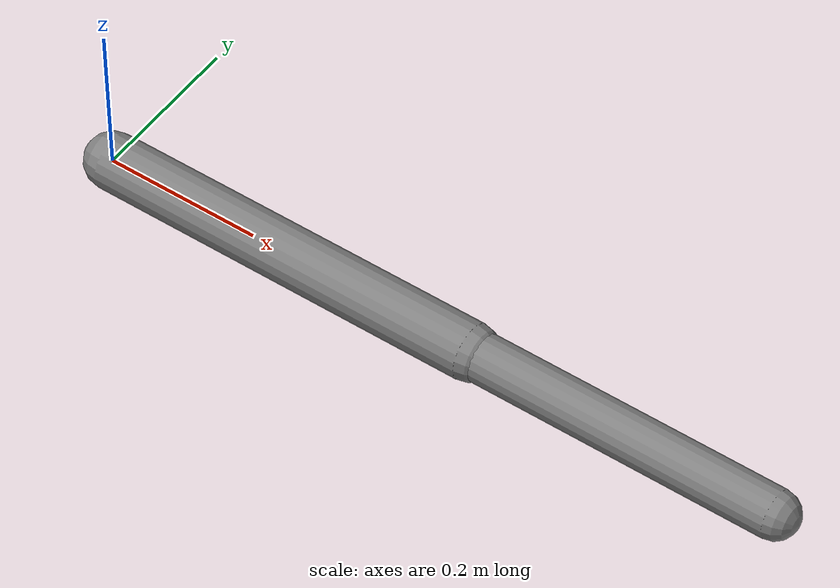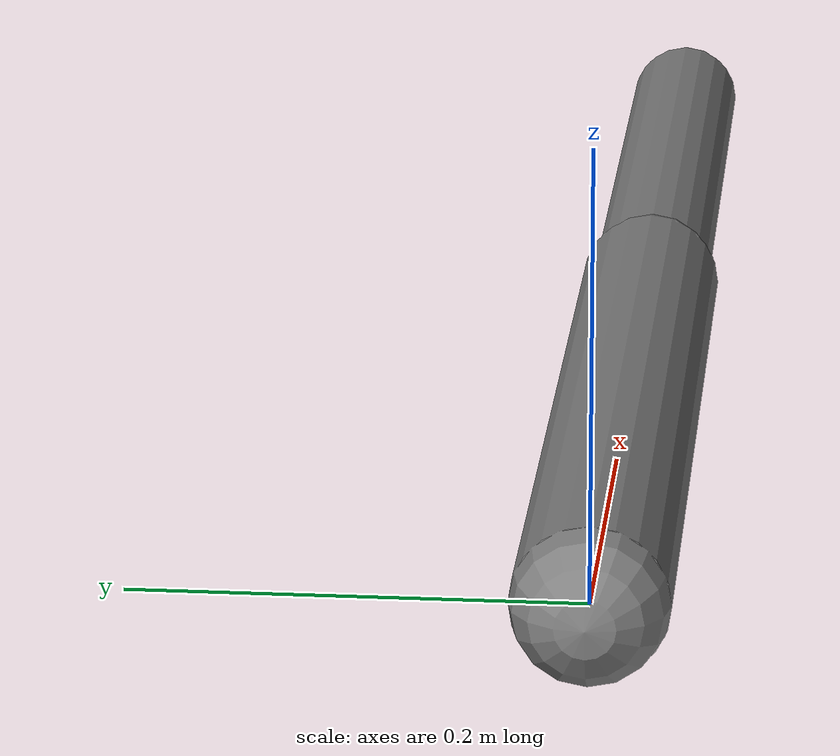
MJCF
<mujoco model="native_upgrade_planar_arm">
  <compiler angle="radian"/>
  <option timestep="0.004" gravity="0 0 0" integrator="RK4"/>
  <default>
    <joint armature="0.02" damping="0.05"/>
    <geom contype="0" conaffinity="0" density="350"/>
  </default>
  <worldbody>
    <body name="upper_arm" pos="0 0 0">
      <joint name="shoulder" type="hinge" axis="0 0 1"/>
      <geom name="upper_link" type="capsule" fromto="0 0 0 0.5 0 0" size="0.035"/>
      <body name="forearm" pos="0.5 0 0">
        <joint name="elbow" type="hinge" axis="0 0 1"/>
        <geom name="forearm_link" type="capsule" fromto="0 0 0 0.4 0 0" size="0.03"/>
        <site name="tip" pos="0.4 0 0" size="0.01"/>
      </body>
    </body>
  </worldbody>
  <actuator>
    <motor name="shoulder_drive" joint="shoulder" gear="1" ctrllimited="true" ctrlrange="-1 1"/>
    <motor name="elbow_drive" joint="elbow" gear="0.7" ctrllimited="true" ctrlrange="-1 1"/>
  </actuator>
  <sensor>
    <jointpos name="shoulder_position" joint="shoulder"/>
    <jointpos name="elbow_position" joint="elbow"/>
  </sensor>
</mujoco>
